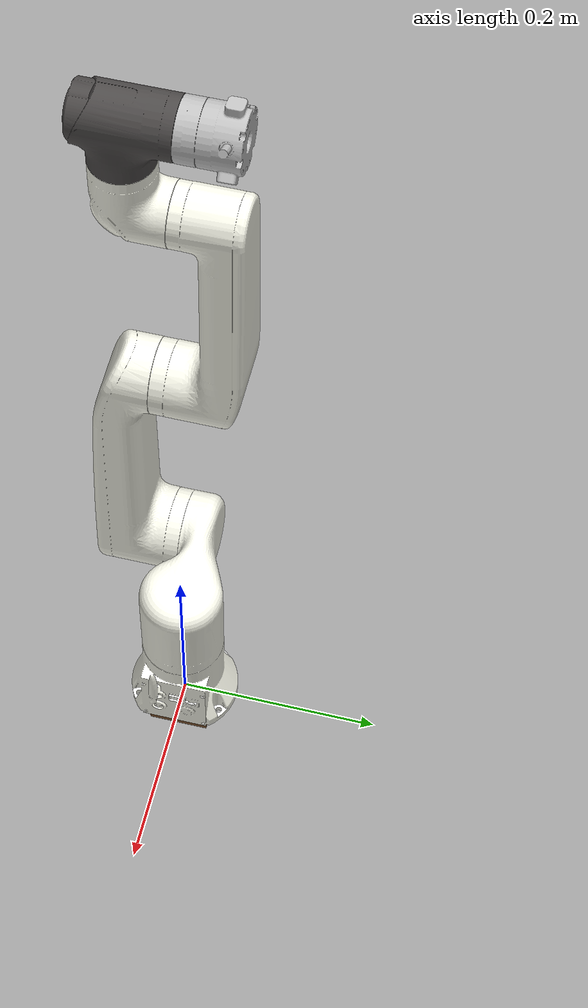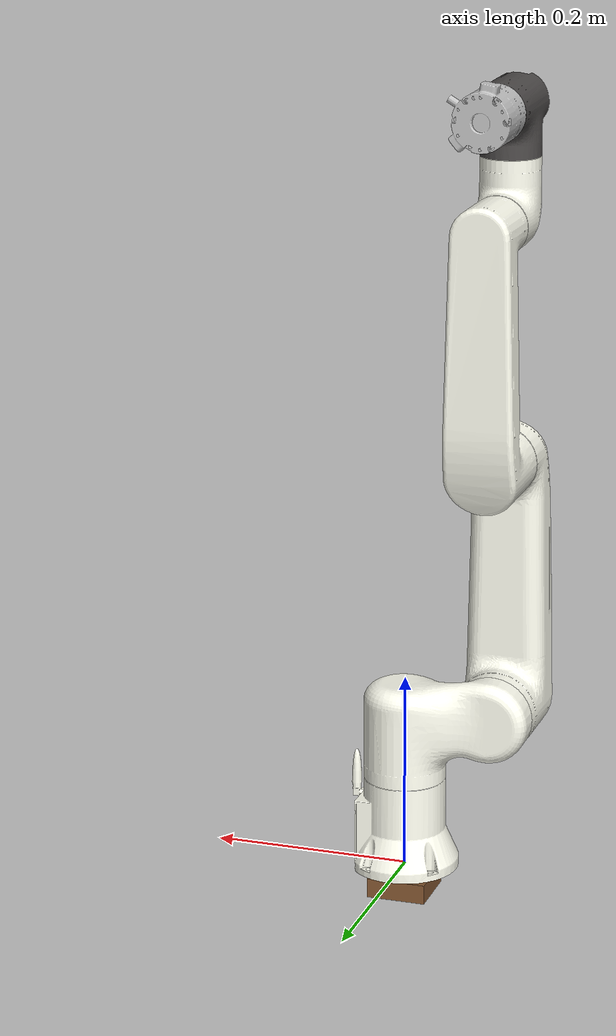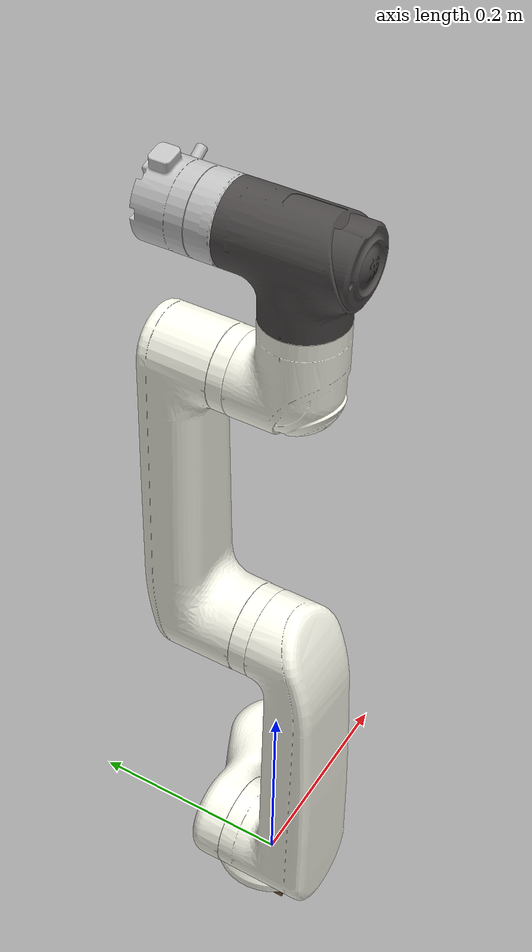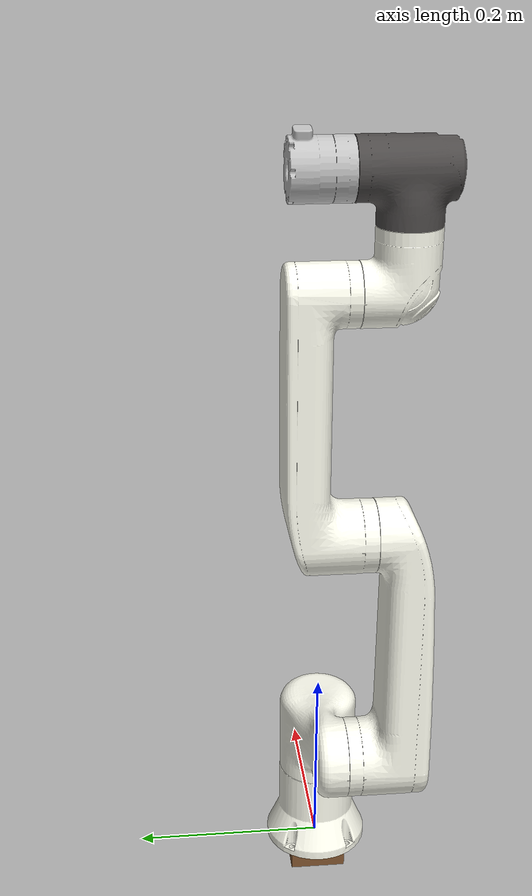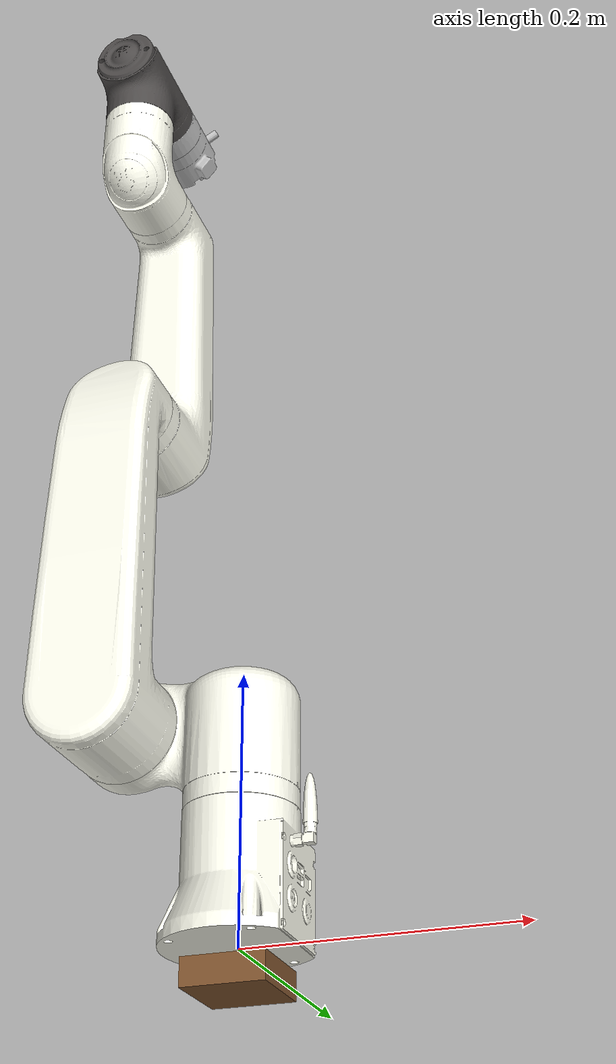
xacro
<?xml version="1.0" encoding="utf-8"?>
<robot  name="rm_eco65" xmlns:xacro="http://www.ros.org/wiki/xacro">
<xacro:include filename="$(find rm_description)/urdf/ECO65/rm_eco65.transmission.xacro"/>
<xacro:include filename="$(find rm_description)/urdf/ECO65/rm_eco65.gazebo.xacro"/>
  <!-- Inertial matrix -->
<xacro:macro name="inertial_matrix" params="mass">
<inertial>
    <mass value="${mass}" />
    <inertia ixx="1.0" ixy="0.0" ixz="0.0" iyy="0.5" iyz="0.0" izz="1.0" />
</inertial>
</xacro:macro>
 <xacro:macro name="Box_inertial_matrix" params="m l w h">
       <inertial>
               <mass value="${m}" />
               <inertia ixx="${m*(h*h + l*l)/12}" ixy = "0" ixz = "0"
                   iyy="${m*(w*w + l*l)/12}" iyz= "0"
                   izz="${m*(w*w + h*h)/12}" />
       </inertial>
  </xacro:macro>

    <link name="dummy">
    </link>
    <joint name="dummy_joint" type="fixed">
      <parent link="dummy" />
      <child link="baselink" />
    </joint>

  <!-- ///////////////////////////////////////   bottom_joint   ////////////////////////////////////////// -->
  <joint name="bottom_joint" type="fixed">
    <origin xyz="0 0 0" rpy="0 0 0" />
    <parent link="baselink"/>
    <child link="bottom_link"/>
  </joint>
  <link name="bottom_link">
    <visual>
      <origin xyz=" 0 0 -0.02"  rpy="0 0 0"/>
      <geometry>
        <box size="0.06 0.06 0.02" />
      </geometry>
      <material name="Brown" />
    </visual>
    <collision>
      <origin xyz=" 0 0 -0.02"  rpy="0 0 0"/>
      <geometry>
        <box size="0.06 0.06 0.02" />
      </geometry>
    </collision>
    <xacro:Box_inertial_matrix m="500" l="1" w="1" h="0.02"/>
  </link>

  <link
  name="baselink">
  <inertial>
    <origin
      xyz="0.00059974 -9.2907E-05 0.043301"
      rpy="0 0 0" />
    <mass
      value="0.61127" />
    <inertia
      ixx="0.00080212"
      ixy="3.0274E-06"
      ixz="-2.8744E-05"
      iyy="0.00080501"
      iyz="1.9741E-06"
      izz="0.00066167" />
  </inertial>
  <visual>
    <origin
      xyz="0 0 0"
      rpy="0 0 0" />
    <geometry>
      <mesh
        filename="package://rm_description/meshes/ECO65_6F/base_link.STL" />
    </geometry>
    <material
      name="">
      <color
        rgba="1 1 0.9451 1" />
    </material>
  </visual>
  <collision>
    <origin
      xyz="0 0 0"
      rpy="0 0 0" />
    <geometry>
      <mesh
        filename="package://rm_description/meshes/ECO65_6F/base_link.STL" />
    </geometry>
  </collision>
</link>
<link
  name="Link1">
  <inertial>
    <origin
      xyz="-0.0228563669572814 -4.99910293902505E-06 -0.0136576161182959"
      rpy="0 0 0" />
    <mass
      value="0.74252212802658" />
    <inertia
      ixx="0.000814086083162491"
      ixy="-1.88391181098273E-05"
      ixz="0.000227472474818497"
      iyy="0.00184803352381529"
      iyz="1.99528907338362E-06"
      izz="0.0015286811412048" />
  </inertial>
  <visual>
    <origin
      xyz="0 0 0"
      rpy="0 0 0" />
    <geometry>
      <mesh
        filename="package://rm_description/meshes/ECO65_6F/Link1.STL" />
    </geometry>
    <material
      name="">
      <color
        rgba="1 1 0.945098039215686 1" />
    </material>
  </visual>
  <collision>
    <origin
      xyz="0 0 0"
      rpy="0 0 0" />
    <geometry>
      <mesh
        filename="package://rm_description/meshes/ECO65_6F/Link1.STL" />
    </geometry>
  </collision>
</link>
<joint
  name="joint1"
  type="revolute">
  <origin
    xyz="0 0 0.1625"
    rpy="0 0 0" />
  <parent
    link="baselink" />
  <child
    link="Link1" />
  <axis
    xyz="0 0 1" />
  <limit
    lower="-3.1923"
    upper="3.1923"
    effort="100"
    velocity="1" />
</joint>
<link
  name="Link2">
  <inertial>
    <origin
      xyz="-1.59429561677471E-06 0.103362466937216 0.0673319328195465"
      rpy="0 0 0" />
    <mass
      value="1.35020712394805" />
    <inertia
      ixx="0.0128209817127053"
      ixy="-7.51100910647581E-08"
      ixz="1.16164018082653E-08"
      iyy="0.00112367171816591"
      iyz="-0.000337549701469296"
      izz="0.0129325779698663" />
  </inertial>
  <visual>
    <origin
      xyz="0 0 0"
      rpy="0 0 0" />
    <geometry>
      <mesh
        filename="package://rm_description/meshes/ECO65_6F/Link2.STL" />
    </geometry>
    <material
      name="">
      <color
        rgba="1 1 0.945098039215686 1" />
    </material>
  </visual>
  <collision>
    <origin
      xyz="0 0 0"
      rpy="0 0 0" />
    <geometry>
      <mesh
        filename="package://rm_description/meshes/ECO65_6F/Link2.STL" />
    </geometry>
  </collision>
</link>
<joint
  name="joint2"
  type="revolute">
  <origin
    xyz="-0.086 0 0"
    rpy="1.5708 0 0" />
  <parent
    link="Link1" />
  <child
    link="Link2" />
  <axis
    xyz="3.5522E-05 0 -1" />
  <limit
    lower="-2.61666"
    upper="2.442"
    effort="100"
    velocity="1" />
</joint>
<link
  name="Link3">
  <inertial>
    <origin
      xyz="0.103737203833717 6.75061995081272E-07 0.0185992268684813"
      rpy="0 0 0" />
    <mass
      value="1.0422213139163" />
    <inertia
      ixx="0.000841150491675703"
      ixy="-2.19673641011106E-08"
      ixz="-0.000686133542349963"
      iyy="0.00940465035102768"
      iyz="-2.88314026692745E-09"
      izz="0.00924817189739541" />
  </inertial>
  <visual>
    <origin
      xyz="0 0 0"
      rpy="0 0 0" />
    <geometry>
      <mesh
        filename="package://rm_description/meshes/ECO65_6F/Link3.STL" />
    </geometry>
    <material
      name="">
      <color
        rgba="1 1 0.945098039215686 1" />
    </material>
  </visual>
  <collision>
    <origin
      xyz="0 0 0"
      rpy="0 0 0" />
    <geometry>
      <mesh
        filename="package://rm_description/meshes/ECO65_6F/Link3.STL" />
    </geometry>
  </collision>
</link>
<joint
  name="joint3"
  type="revolute">
  <origin
    xyz="0 0.26 0"
    rpy="3.1416 0 1.5708" />
  <parent
    link="Link2" />
  <child
    link="Link3" />
  <axis
    xyz="0 -3.5522E-05 1" />
  <limit
    lower="-2.61666"
    upper="2.61666"
    effort="100"
    velocity="1" />
</joint>
<link
  name="Link4">
  <inertial>
    <origin
      xyz="-0.00698041126858398 -0.0163300774411825 0.00674302075461098"
      rpy="0 0 0" />
    <mass
      value="0.273792481713346" />
    <inertia
      ixx="0"
      ixy="0"
      ixz="0"
      iyy="0"
      iyz="0"
      izz="0" />
  </inertial>
  <visual>
    <origin
      xyz="0 0 0"
      rpy="0 0 0" />
    <geometry>
      <mesh
        filename="package://rm_description/meshes/ECO65_6F/Link4.STL" />
    </geometry>
    <material
      name="">
      <color
        rgba="1 1 0.945098039215686 1" />
    </material>
  </visual>
  <collision>
    <origin
      xyz="0 0 0"
      rpy="0 0 0" />
    <geometry>
      <mesh
        filename="package://rm_description/meshes/ECO65_6F/Link4.STL" />
    </geometry>
  </collision>
</link>
<joint
  name="joint4"
  type="revolute">
  <origin
    xyz="0.24 0 -0.05888"
    rpy="0 0 1.5708" />
  <parent
    link="Link3" />
  <child
    link="Link4" />
  <axis
    xyz="-3.5522E-05 0 1" />
  <limit
    lower="-2.61666"
    upper="2.61666"
    effort="100"
    velocity="1" />
</joint>
<link
  name="Link5">
  <inertial>
    <origin
      xyz="5.97905018565048E-07 0.00665014405373091 -0.0126472033135854"
      rpy="0 0 0" />
    <mass
      value="0.27793758472494" />
    <inertia
      ixx="0.000247512115419683"
      ixy="-5.76598099571412E-09"
      ixz="5.25510533068683E-10"
      iyy="0.000176476753838992"
      iyz="-2.85521641162257E-05"
      izz="0.000192954294679699" />
  </inertial>
  <visual>
    <origin
      xyz="0 0 0"
      rpy="0 0 0" />
    <geometry>
      <mesh
        filename="package://rm_description/meshes/ECO65_6F/Link5.STL" />
    </geometry>
    <material
      name="">
      <color
        rgba="0.298039215686275 0.286274509803922 0.282352941176471 1" />
    </material>
  </visual>
  <collision>
    <origin
      xyz="0 0 0"
      rpy="0 0 0" />
    <geometry>
      <mesh
        filename="package://rm_description/meshes/ECO65_6F/Link5.STL" />
    </geometry>
  </collision>
</link>
<joint
  name="joint5"
  type="revolute">
  <origin
    xyz="0 -0.11 -1.7417E-05"
    rpy="1.5708 0 0" />
  <parent
    link="Link4" />
  <child
    link="Link5" />
  <axis
    xyz="0 0 1" />
  <limit
    lower="-2.96555"
    upper="2.96555"
    effort="100"
    velocity="1" />
</joint>
<link
  name="Link6">
  <inertial>
    <origin
      xyz="0.000342343794440939 -0.000189420093943737 -0.0285766702366254"
      rpy="0 0 0" />
    <mass
      value="0.14611108984048" />
    <inertia
      ixx="7.05928109974802E-05"
      ixy="-1.19201783223218E-06"
      ixz="-8.08327801418456E-07"
      iyy="6.9259426871958E-05"
      iyz="4.34362652271675E-07"
      izz="6.18079595264477E-05" />
  </inertial>
  <visual>
    <origin
      xyz="0 0 0"
      rpy="0 0 0" />
    <geometry>
      <mesh
        filename="package://rm_description/meshes/ECO65_6F/Link6.STL" />
    </geometry>
    <material
      name="">
      <color
        rgba="0.752941176470588 0.752941176470588 0.752941176470588 1" />
    </material>
  </visual>
  <collision>
    <origin
      xyz="0 0 0"
      rpy="0 0 0" />
    <geometry>
      <mesh
        filename="package://rm_description/meshes/ECO65_6F/Link6.STL" />
    </geometry>
  </collision>
</link>
<joint
  name="joint6"
  type="revolute">
  <origin
    xyz="0 0.108 0"
    rpy="-1.5708 0 0" />
  <parent
    link="Link5" />
  <child
    link="Link6" />
  <axis
    xyz="-3.5522E-05 0 1" />
  <limit
    lower="-2.96555"
    upper="2.96555"
    effort="100"
    velocity="1" />
</joint>

  <!-- Transmissions for ROS Control -->
  <xacro:macro name="transmission_block" params="joint_name">
    <transmission name="tran1">
      <type>transmission_interface/SimpleTransmission</type>
      <joint name="${joint_name}">
        <hardwareInterface>hardware_interface/PositionjointInterface</hardwareInterface>
      </joint>
      <actuator name="motor1">
        <hardwareInterface>hardware_interface/PositionjointInterface</hardwareInterface>
        <mechanicalReduction>1</mechanicalReduction>
      </actuator>
    </transmission>
  </xacro:macro>

  <xacro:transmission_block joint_name="joint1"/>
  <xacro:transmission_block joint_name="joint2"/>
  <xacro:transmission_block joint_name="joint3"/>
  <xacro:transmission_block joint_name="joint4"/>
  <xacro:transmission_block joint_name="joint5"/>
  <xacro:transmission_block joint_name="joint6"/>

  <!-- ros_control plugin -->
  <gazebo>
    <plugin name="gazebo_ros_control" filename="libgazebo_ros_control.so">
      <robotNamespace>/arm</robotNamespace>
      <robotSimType>gazebo_ros_control/DefaultRobotHWSim</robotSimType>
      <legacyModeNS>true</legacyModeNS>
    </plugin>
  </gazebo>
</robot>
